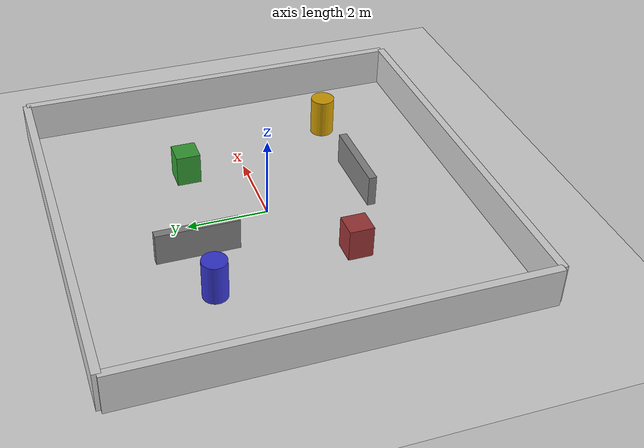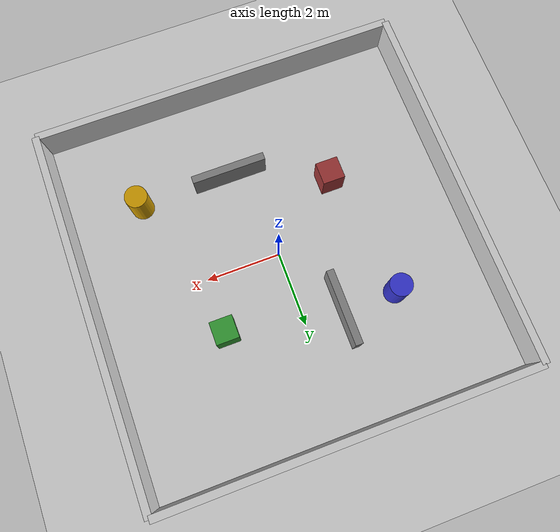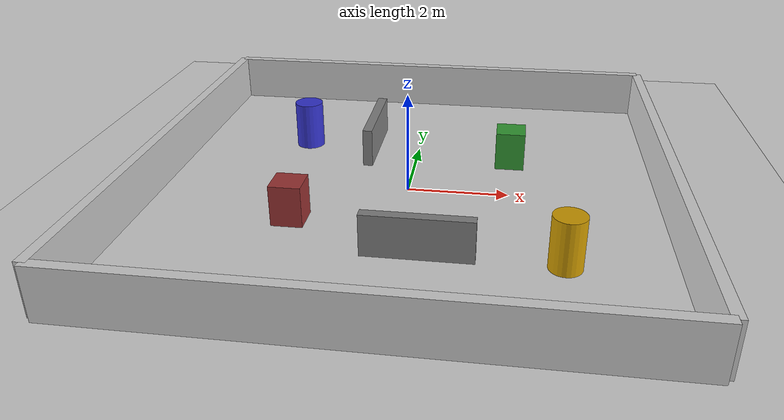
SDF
<?xml version="1.0"?>
<sdf version="1.6">
  <world name="fw_mini_world">

    <!-- 조명 (인라인) -->
    <light name="sun" type="directional">
      <cast_shadows>true</cast_shadows>
      <pose>0 0 10 0 0 0</pose>
      <diffuse>0.8 0.8 0.8 1</diffuse>
      <specular>0.2 0.2 0.2 1</specular>
      <direction>-0.5 0.1 -0.9</direction>
    </light>

    <!-- 바닥 (인라인) -->
    <model name="ground_plane">
      <static>true</static>
      <link name="link">
        <collision name="collision">
          <geometry>
            <plane><normal>0 0 1</normal><size>50 50</size></plane>
          </geometry>
          <surface>
            <friction><ode><mu>100</mu><mu2>50</mu2></ode></friction>
          </surface>
        </collision>
        <visual name="visual">
          <cast_shadows>false</cast_shadows>
          <geometry>
            <plane><normal>0 0 1</normal><size>50 50</size></plane>
          </geometry>
          <material>
            <script>
              <uri>file://media/materials/scripts/gazebo.material</uri>
              <name>Gazebo/Grey</name>
            </script>
          </material>
        </visual>
      </link>
    </model>

    <!-- 외벽 (10m x 10m 사각형 방) -->

    <!-- 북쪽 벽 -->
    <model name="wall_north">
      <static>true</static>
      <pose>0 5 0.5 0 0 0</pose>
      <link name="link">
        <collision name="collision">
          <geometry><box><size>10 0.2 1.0</size></box></geometry>
        </collision>
        <visual name="visual">
          <geometry><box><size>10 0.2 1.0</size></box></geometry>
          <material><ambient>0.8 0.8 0.8 1</ambient></material>
        </visual>
      </link>
    </model>

    <!-- 남쪽 벽 -->
    <model name="wall_south">
      <static>true</static>
      <pose>0 -5 0.5 0 0 0</pose>
      <link name="link">
        <collision name="collision">
          <geometry><box><size>10 0.2 1.0</size></box></geometry>
        </collision>
        <visual name="visual">
          <geometry><box><size>10 0.2 1.0</size></box></geometry>
          <material><ambient>0.8 0.8 0.8 1</ambient></material>
        </visual>
      </link>
    </model>

    <!-- 동쪽 벽 -->
    <model name="wall_east">
      <static>true</static>
      <pose>5 0 0.5 0 0 1.5708</pose>
      <link name="link">
        <collision name="collision">
          <geometry><box><size>10 0.2 1.0</size></box></geometry>
        </collision>
        <visual name="visual">
          <geometry><box><size>10 0.2 1.0</size></box></geometry>
          <material><ambient>0.8 0.8 0.8 1</ambient></material>
        </visual>
      </link>
    </model>

    <!-- 서쪽 벽 -->
    <model name="wall_west">
      <static>true</static>
      <pose>-5 0 0.5 0 0 1.5708</pose>
      <link name="link">
        <collision name="collision">
          <geometry><box><size>10 0.2 1.0</size></box></geometry>
        </collision>
        <visual name="visual">
          <geometry><box><size>10 0.2 1.0</size></box></geometry>
          <material><ambient>0.8 0.8 0.8 1</ambient></material>
        </visual>
      </link>
    </model>

    <!-- 내부 장애물들             -->

    <model name="obstacle_box_1">
      <static>true</static>
      <pose>2.0 1.5 0.4 0 0 0</pose>
      <link name="link">
        <collision name="collision">
          <geometry><box><size>0.6 0.6 0.8</size></box></geometry>
        </collision>
        <visual name="visual">
          <geometry><box><size>0.6 0.6 0.8</size></box></geometry>
          <material><ambient>0.2 0.6 0.2 1</ambient></material>
        </visual>
      </link>
    </model>

    <model name="obstacle_box_2">
      <static>true</static>
      <pose>-2.0 -1.5 0.4 0 0 0</pose>
      <link name="link">
        <collision name="collision">
          <geometry><box><size>0.6 0.6 0.8</size></box></geometry>
        </collision>
        <visual name="visual">
          <geometry><box><size>0.6 0.6 0.8</size></box></geometry>
          <material><ambient>0.6 0.2 0.2 1</ambient></material>
        </visual>
      </link>
    </model>

    <model name="obstacle_cylinder_1">
      <static>true</static>
      <pose>-2.5 2.0 0.5 0 0 0</pose>
      <link name="link">
        <collision name="collision">
          <geometry><cylinder><radius>0.3</radius><length>1.0</length></cylinder></geometry>
        </collision>
        <visual name="visual">
          <geometry><cylinder><radius>0.3</radius><length>1.0</length></cylinder></geometry>
          <material><ambient>0.2 0.2 0.8 1</ambient></material>
        </visual>
      </link>
    </model>

    <model name="obstacle_cylinder_2">
      <static>true</static>
      <pose>3.0 -2.5 0.5 0 0 0</pose>
      <link name="link">
        <collision name="collision">
          <geometry><cylinder><radius>0.3</radius><length>1.0</length></cylinder></geometry>
        </collision>
        <visual name="visual">
          <geometry><cylinder><radius>0.3</radius><length>1.0</length></cylinder></geometry>
          <material><ambient>0.8 0.6 0.0 1</ambient></material>
        </visual>
      </link>
    </model>

    <model name="obstacle_wall_1">
      <static>true</static>
      <pose>0.5 -2.5 0.4 0 0 0</pose>
      <link name="link">
        <collision name="collision">
          <geometry><box><size>2.0 0.2 0.8</size></box></geometry>
        </collision>
        <visual name="visual">
          <geometry><box><size>2.0 0.2 0.8</size></box></geometry>
          <material><ambient>0.5 0.5 0.5 1</ambient></material>
        </visual>
      </link>
    </model>

    <model name="obstacle_wall_2">
      <static>true</static>
      <pose>-1.0 2.0 0.4 0 0 1.5708</pose>
      <link name="link">
        <collision name="collision">
          <geometry><box><size>2.0 0.2 0.8</size></box></geometry>
        </collision>
        <visual name="visual">
          <geometry><box><size>2.0 0.2 0.8</size></box></geometry>
          <material><ambient>0.5 0.5 0.5 1</ambient></material>
        </visual>
      </link>
    </model>

    <!-- 물리 설정 -->
    <physics type="ode">
      <real_time_update_rate>1000.0</real_time_update_rate>
      <max_step_size>0.001</max_step_size>
      <real_time_factor>1</real_time_factor>
    </physics>

  </world>
</sdf>
